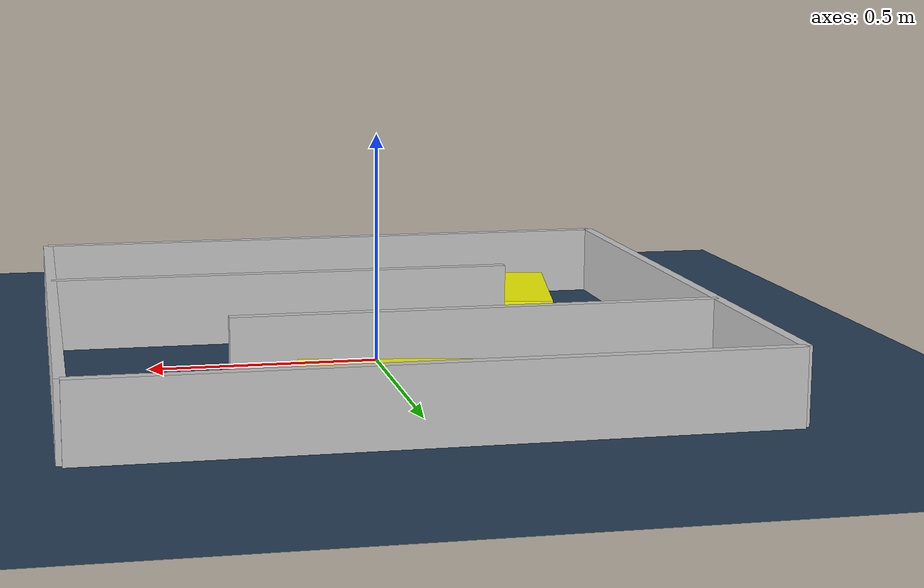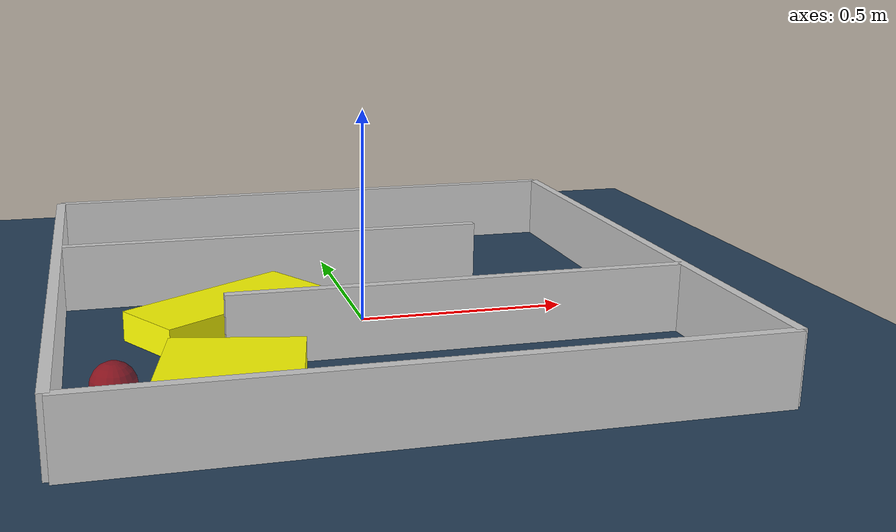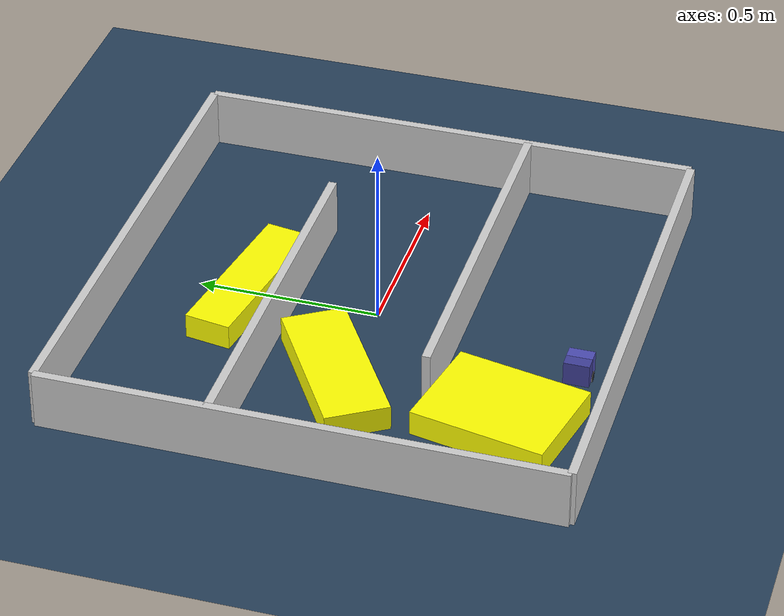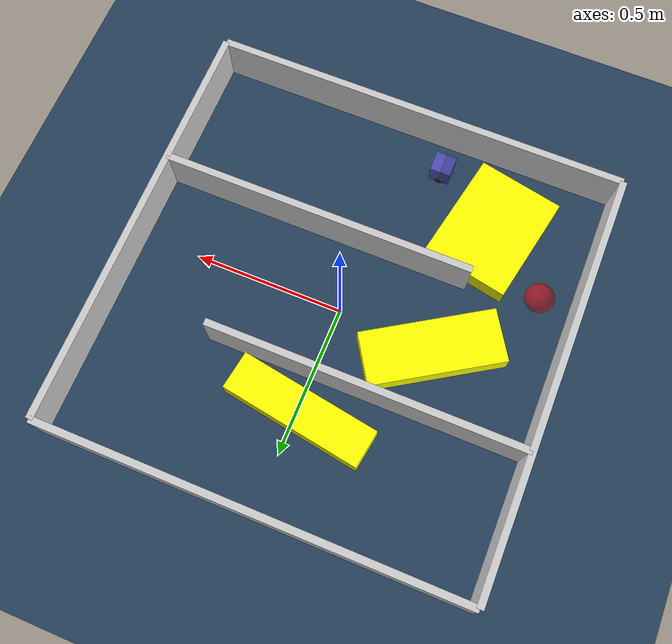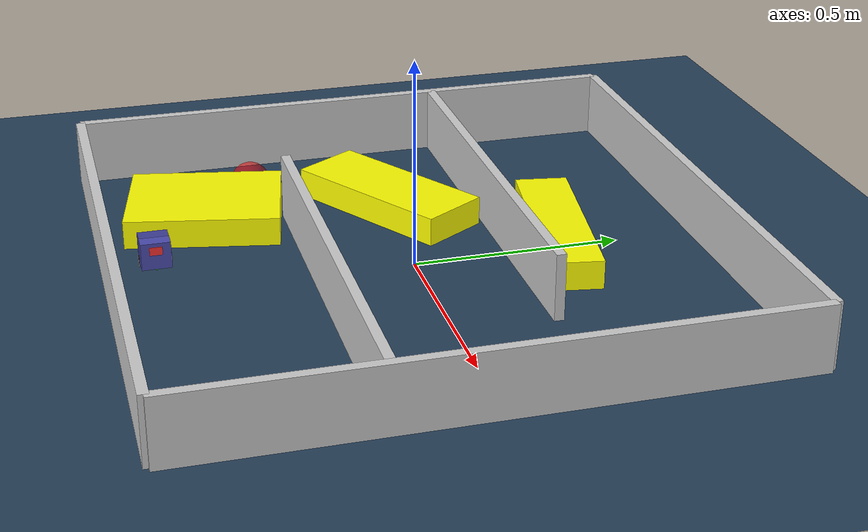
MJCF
<?xml version='1.0' encoding='utf-8'?>
<mujoco model="generated_environment">
  <option timestep="0.002" integrator="implicitfast" cone="elliptic" iterations="100" gravity="0 0 -9.81" />
  <default>
    <geom density="1" />
  </default>
  <asset>
    <texture builtin="gradient" height="3072" rgb1="0.3 0.5 0.7" rgb2="0 0 0" type="skybox" width="512" />
    <texture builtin="checker" height="300" mark="edge" markrgb="0.8 0.8 0.8" name="groundplane" rgb1="0.2 0.3 0.4" rgb2="0.1 0.2 0.3" type="2d" width="300" />
    <material name="groundplane" reflectance="0.2" texrepeat="5 5" texture="groundplane" texuniform="true" />
    <material name="robot" rgba="1.0 1.0 0.0 1.0" />
  </asset>
  <worldbody>
    <light dir="0 0 -1" directional="true" pos="0 0 1.5" />
    <geom condim="4" friction="0.5 0.005 0.001" material="groundplane" name="floor" size="0 0 0.05" type="plane" />
    <body name="walls">
      <geom name="wall_1" condim="4" pos="-0.699000 0.000000 0.080000" rgba="0.800000011920929 0.800000011920929 0.800000011920929 1.0" size="0.011650 0.699000 0.080000" type="box" />
      <geom name="wall_2" condim="4" pos="0.699000 0.000000 0.080000" rgba="0.800000011920929 0.800000011920929 0.800000011920929 1.0" size="0.011650 0.699000 0.080000" type="box" />
      <geom name="wall_3" condim="4" pos="0.000000 -0.699000 0.080000" rgba="0.800000011920929 0.800000011920929 0.800000011920929 1.0" size="0.699000 0.011650 0.080000" type="box" />
      <geom name="wall_4" condim="4" pos="0.000000 0.699000 0.080000" rgba="0.800000011920929 0.800000011920929 0.800000011920929 1.0" size="0.699000 0.011650 0.080000" type="box" />
      <geom name="wall_5" condim="4" pos="0.174750 -0.233000 0.080000" rgba="0.800000011920929 0.800000011920929 0.800000011920929 1.0" size="0.524250 0.011650 0.080000" type="box" />
      <geom name="wall_6" condim="4" pos="-0.174750 0.233000 0.080000" rgba="0.800000011920929 0.800000011920929 0.800000011920929 1.0" size="0.524250 0.011650 0.080000" type="box" />
    </body>
    <body name="car" pos="-0.13500000000000012 -0.5849999999999999 0.010000">
      <freejoint name="car_freejoint" />
      <inertial pos="0.000000 0 0.037500" mass="0.350000" diaginertia="0.000266 0.000266 0.000286" />
      <geom name="front_chassis_collision" type="box" pos="0.017500 0 0.037500" size="0.017500 0.035000 0.032500" rgba="0.3 0.3 0.7 1" />
      <geom name="rear_chassis_collision" type="box" pos="-0.017500 0 0.037500" size="0.017500 0.035000 0.032500" rgba="0.25 0.25 0.6 1" />
      <geom name="front_marker" type="box" pos="0.034000 0 0.050500" size="0.002000 0.015000 0.010000" rgba="1.0 0.2 0.2 1" contype="0" conaffinity="0" />
      <body name="rear_support_body" pos="-0.030000 0.000000 0.002500">
        <joint name="rear_caster_joint" type="ball" damping="0.0001" />
        <inertial pos="0 0 0" mass="0.025000" diaginertia="0.000001 0.000001 0.000001" />
        <geom name="rear_support" type="sphere" pos="0 0 0" size="0.002500" friction="0.000000 0.000000 0.000000" rgba="0.7 0.1 0.1 1" />
      </body>
      <body name="front_support_body" pos="0.030000 0.000000 0.002500">
        <joint name="front_caster_joint" type="ball" damping="0.0001" />
        <inertial pos="0 0 0" mass="0.025000" diaginertia="0.000001 0.000001 0.000001" />
        <geom name="front_support" type="sphere" pos="0 0 0" size="0.002500" friction="0.000000 0.000000 0.000000" rgba="0.1 0.7 0.1 1" />
      </body>
      <body name="left_wheel" pos="0.000000 0.037500 0.015000">
        <inertial pos="0 0 0" mass="0.050000" diaginertia="0.000003 0.000006 0.000003" />
        <joint name="left_wheel_joint" type="hinge" axis="0 1 0" />
        <geom name="left_wheel_collision" type="cylinder" size="0.015000 0.000500" euler="90 0 0" rgba="0.1 0.1 0.1 1" />
      </body>
      <body name="right_wheel" pos="0.000000 -0.037500 0.015000">
        <inertial pos="0 0 0" mass="0.050000" diaginertia="0.000003 0.000006 0.000003" />
        <joint name="right_wheel_joint" type="hinge" axis="0 1 0" />
        <geom name="right_wheel_collision" type="cylinder" size="0.015000 0.000500" euler="90 0 0" rgba="0.1 0.1 0.1 1" />
      </body>
    </body>
    <body name="obstacle_0_movable">
      <geom name="obstacle_0_movable" condim="4" pos="-0.320660046064456 0.019284459727607506 0.035" euler="0 0 212.21447260584495" friction="0.0 0.005 0.001" rgba="1 1 0 1" size="0.22320908351830443 0.08802545762862264 0.035" type="box" mass="0.1" />
      <joint type="free" />
    </body>
    <body name="obstacle_1_movable">
      <geom name="obstacle_1_movable" condim="4" pos="-0.013327660035852062 0.35672090214247154 0.035" euler="0 0 260.84640024573963" friction="0.0 0.005 0.001" rgba="1 1 0 1" size="0.06444579195235497 0.23824881421568322 0.035" type="box" mass="0.1" />
      <joint type="free" />
    </body>
    <body name="obstacle_2_movable">
      <geom name="obstacle_2_movable" condim="4" pos="-0.36306594533480946 -0.4344432030121457 0.035" euler="0 0 348.5967911672738" friction="0.0 0.005 0.001" rgba="1 1 0 1" size="0.14512463309896717 0.18561465023848078 0.035" type="box" mass="0.1" />
      <joint type="free" />
    </body>
    <site name="goal" type="sphere" pos="-0.5849999999999999 -0.28500000000000003 0.0" size="0.05" rgba="1 0 0 0.5" />
  </worldbody>
  <actuator>
    <velocity name="left_wheel_drive" joint="left_wheel_joint" ctrlrange="-25.000000 25.000000" kv="0.750000" forcerange="-0.300000 0.300000" />
    <velocity name="right_wheel_drive" joint="right_wheel_joint" ctrlrange="-25.000000 25.000000" kv="0.750000" forcerange="-0.300000 0.300000" />
  </actuator>
</mujoco>
